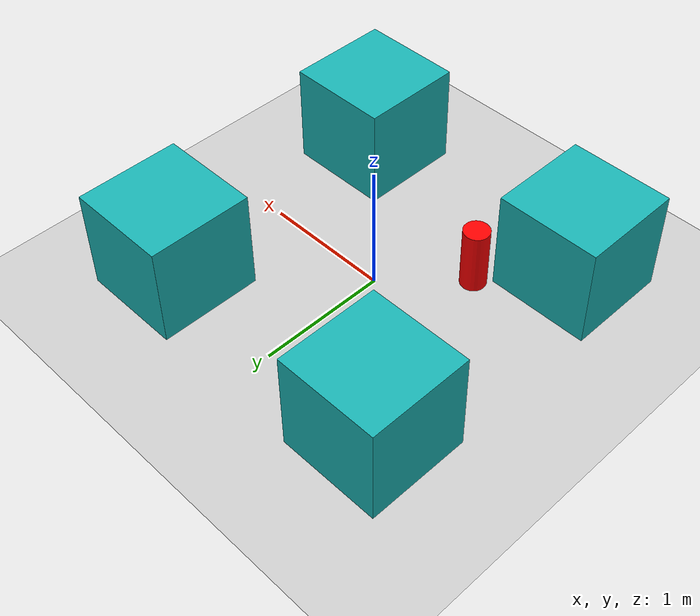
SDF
<sdf version="1.6">
 <world name="default">
  <light name="sun" type="directional">
   <pose>0 0 10 0 -0 0</pose>
   <diffuse>0.8 0.8 0.8 1</diffuse>
   <specular>0.1 0.1 0.1 1</specular>
   <attenuation>
    <range>1000</range>
    <constant>0.9</constant>
    <linear>0.01</linear>
    <quadratic>0.001</quadratic>
   </attenuation>
   <direction>-0.5 0.5 -1</direction>
  </light>
  <model name="ground_plane">
   <static>1</static>
   <link name="link">
    <collision name="collision">
     <geometry><plane><normal>0 0 1</normal><size>100 100</size></plane></geometry>
     <surface><friction><ode><mu>100</mu><mu2>50</mu2></ode></friction></surface>
    </collision>
    <visual name="visual">
     <cast_shadows>0</cast_shadows>
     <geometry><plane><normal>0 0 1</normal><size>100 100</size></plane></geometry>
     <material>
      <script><uri>file://media/materials/scripts/gazebo.material</uri><name>Gazebo/Grey</name></script>
     </material>
    </visual>
   </link>
  </model>
  <gravity>0 0 -9.8</gravity>
  <magnetic_field>6e-06 2.3e-05 -4.2e-05</magnetic_field>
  <atmosphere type="adiabatic"/>
  <physics name="default_physics" default="0" type="ode">
   <max_step_size>0.001</max_step_size>
   <real_time_factor>1</real_time_factor>
   <real_time_update_rate>1000</real_time_update_rate>
  </physics>
  <scene><ambient>0.4 0.4 0.4 1</ambient><background>0.7 0.7 0.7 1</background><shadows>1</shadows></scene>
  <spherical_coordinates>
   <surface_model>EARTH_WGS84</surface_model>
   <latitude_deg>0</latitude_deg>
   <longitude_deg>0</longitude_deg>
   <elevation>0</elevation>
   <heading_deg>0</heading_deg>
  </spherical_coordinates>
  <model name="simple_map_feu">
   <link name="link_0">
    <pose>-1 1 0 0 -0 0</pose>
    <inertial>
     <mass>1</mass>
     <inertia>
      <ixx>0.166667</ixx>
      <ixy>0</ixy>
      <ixz>0</ixz>
      <iyy>0.166667</iyy>
      <iyz>0</iyz>
      <izz>0.166667</izz>
     </inertia>
    </inertial>
    <visual name="visual">
     <pose>0 0 -0.1 0 -0 0</pose>
     <geometry><box><size>0.8 0.8 0.8</size></box></geometry>
     <material>
      <lighting>1</lighting>
      <script><uri>file://media/materials/scripts/gazebo.material</uri><name>Gazebo/Grey</name></script>
      <ambient>0.1 0.3 0.7 1</ambient>
      <diffuse>0.1 0.7 0.7 1</diffuse>
      <specular>0.1 0.01 0.7 1</specular>
      <emissive>0.1 0 0.7 1</emissive>
      <shader type="vertex"><normal_map>__default__</normal_map></shader>
     </material>
    </visual>
    <collision name="collision">
     <pose>0 0 -0.1 0 -0 0</pose>
     <geometry><box><size>0.8 0.8 0.8</size></box></geometry>
     <surface>
      <friction>
       <ode><mu>1</mu><mu2>1</mu2><fdir1>0 0 0</fdir1><slip1>0</slip1><slip2>0</slip2></ode>
       <torsional>
        <coefficient>1</coefficient>
        <patch_radius>0</patch_radius>
        <surface_radius>0</surface_radius>
        <use_patch_radius>1</use_patch_radius>
        <ode><slip>0</slip></ode>
       </torsional>
      </friction>
      <bounce><restitution_coefficient>0</restitution_coefficient><threshold>1e+06</threshold></bounce>
      <contact>
       <collide_without_contact>0</collide_without_contact>
       <collide_without_contact_bitmask>1</collide_without_contact_bitmask>
       <collide_bitmask>1</collide_bitmask>
       <ode>
        <soft_cfm>0</soft_cfm>
        <soft_erp>0.2</soft_erp>
        <kp>1e+13</kp>
        <kd>1</kd>
        <max_vel>0.01</max_vel>
        <min_depth>0</min_depth>
       </ode>
       <bullet>
        <split_impulse>1</split_impulse>
        <split_impulse_penetration_threshold>-0.01</split_impulse_penetration_threshold>
        <soft_cfm>0</soft_cfm>
        <soft_erp>0.2</soft_erp>
        <kp>1e+13</kp>
        <kd>1</kd>
       </bullet>
      </contact>
     </surface>
    </collision>
   </link>
   <link name="link_0_clone">
    <pose>1 1 0 0 -0 0</pose>
    <inertial>
     <mass>1</mass>
     <inertia>
      <ixx>0.166667</ixx>
      <ixy>0</ixy>
      <ixz>0</ixz>
      <iyy>0.166667</iyy>
      <iyz>0</iyz>
      <izz>0.166667</izz>
     </inertia>
    </inertial>
    <visual name="visual">
     <pose>0 0 -0.1 0 -0 0</pose>
     <geometry><box><size>0.8 0.8 0.8</size></box></geometry>
     <material>
      <lighting>1</lighting>
      <script><uri>file://media/materials/scripts/gazebo.material</uri><name>Gazebo/Grey</name></script>
      <ambient>0.1 0.3 0.7 1</ambient>
      <diffuse>0.1 0.7 0.7 1</diffuse>
      <specular>0.1 0.01 0.7 1</specular>
      <emissive>0.1 0 0.7 1</emissive>
      <shader type="vertex"><normal_map>__default__</normal_map></shader>
     </material>
    </visual>
    <collision name="collision">
     <pose>0 0 -0.1 0 -0 0</pose>
     <geometry><box><size>0.8 0.8 0.8</size></box></geometry>
     <surface>
      <friction>
       <ode><mu>1</mu><mu2>1</mu2><fdir1>0 0 0</fdir1><slip1>0</slip1><slip2>0</slip2></ode>
       <torsional>
        <coefficient>1</coefficient>
        <patch_radius>0</patch_radius>
        <surface_radius>0</surface_radius>
        <use_patch_radius>1</use_patch_radius>
        <ode><slip>0</slip></ode>
       </torsional>
      </friction>
      <bounce><restitution_coefficient>0</restitution_coefficient><threshold>1e+06</threshold></bounce>
      <contact>
       <collide_without_contact>0</collide_without_contact>
       <collide_without_contact_bitmask>1</collide_without_contact_bitmask>
       <collide_bitmask>1</collide_bitmask>
       <ode>
        <soft_cfm>0</soft_cfm>
        <soft_erp>0.2</soft_erp>
        <kp>1e+13</kp>
        <kd>1</kd>
        <max_vel>0.01</max_vel>
        <min_depth>0</min_depth>
       </ode>
       <bullet>
        <split_impulse>1</split_impulse>
        <split_impulse_penetration_threshold>-0.01</split_impulse_penetration_threshold>
        <soft_cfm>0</soft_cfm>
        <soft_erp>0.2</soft_erp>
        <kp>1e+13</kp>
        <kd>1</kd>
       </bullet>
      </contact>
     </surface>
    </collision>
   </link>
   <link name="link_0_clone_0">
    <pose>1 -1 0 0 -0 0</pose>
    <inertial>
     <mass>1</mass>
     <inertia>
      <ixx>0.166667</ixx>
      <ixy>0</ixy>
      <ixz>0</ixz>
      <iyy>0.166667</iyy>
      <iyz>0</iyz>
      <izz>0.166667</izz>
     </inertia>
    </inertial>
    <visual name="visual">
     <pose>0 0 -0.1 0 -0 0</pose>
     <geometry><box><size>0.8 0.8 0.8</size></box></geometry>
     <material>
      <lighting>1</lighting>
      <script><uri>file://media/materials/scripts/gazebo.material</uri><name>Gazebo/Grey</name></script>
      <ambient>0.1 0.3 0.7 1</ambient>
      <diffuse>0.1 0.7 0.7 1</diffuse>
      <specular>0.1 0.01 0.7 1</specular>
      <emissive>0.1 0 0.7 1</emissive>
      <shader type="vertex"><normal_map>__default__</normal_map></shader>
     </material>
    </visual>
    <collision name="collision">
     <pose>0 0 -0.1 0 -0 0</pose>
     <geometry><box><size>0.8 0.8 0.8</size></box></geometry>
     <surface>
      <friction>
       <ode><mu>1</mu><mu2>1</mu2><fdir1>0 0 0</fdir1><slip1>0</slip1><slip2>0</slip2></ode>
       <torsional>
        <coefficient>1</coefficient>
        <patch_radius>0</patch_radius>
        <surface_radius>0</surface_radius>
        <use_patch_radius>1</use_patch_radius>
        <ode><slip>0</slip></ode>
       </torsional>
      </friction>
      <bounce><restitution_coefficient>0</restitution_coefficient><threshold>1e+06</threshold></bounce>
      <contact>
       <collide_without_contact>0</collide_without_contact>
       <collide_without_contact_bitmask>1</collide_without_contact_bitmask>
       <collide_bitmask>1</collide_bitmask>
       <ode>
        <soft_cfm>0</soft_cfm>
        <soft_erp>0.2</soft_erp>
        <kp>1e+13</kp>
        <kd>1</kd>
        <max_vel>0.01</max_vel>
        <min_depth>0</min_depth>
       </ode>
       <bullet>
        <split_impulse>1</split_impulse>
        <split_impulse_penetration_threshold>-0.01</split_impulse_penetration_threshold>
        <soft_cfm>0</soft_cfm>
        <soft_erp>0.2</soft_erp>
        <kp>1e+13</kp>
        <kd>1</kd>
       </bullet>
      </contact>
     </surface>
    </collision>
   </link>
   <link name="link_0_clone_1">
    <pose>-1 -1 0 0 -0 0</pose>
    <inertial>
     <mass>1</mass>
     <inertia>
      <ixx>0.166667</ixx>
      <ixy>0</ixy>
      <ixz>0</ixz>
      <iyy>0.166667</iyy>
      <iyz>0</iyz>
      <izz>0.166667</izz>
     </inertia>
    </inertial>
    <visual name="visual">
     <pose>0 0 -0.1 0 -0 0</pose>
     <geometry><box><size>0.8 0.8 0.8</size></box></geometry>
     <material>
      <lighting>1</lighting>
      <script><uri>file://media/materials/scripts/gazebo.material</uri><name>Gazebo/Grey</name></script>
      <ambient>0.1 0.3 0.7 1</ambient>
      <diffuse>0.1 0.7 0.7 1</diffuse>
      <specular>0.1 0.01 0.7 1</specular>
      <emissive>0.1 0 0.7 1</emissive>
      <shader type="vertex"><normal_map>__default__</normal_map></shader>
     </material>
    </visual>
    <collision name="collision">
     <pose>0 0 -0.1 0 -0 0</pose>
     <geometry><box><size>0.8 0.8 0.8</size></box></geometry>
     <surface>
      <friction>
       <ode><mu>1</mu><mu2>1</mu2><fdir1>0 0 0</fdir1><slip1>0</slip1><slip2>0</slip2></ode>
       <torsional>
        <coefficient>1</coefficient>
        <patch_radius>0</patch_radius>
        <surface_radius>0</surface_radius>
        <use_patch_radius>1</use_patch_radius>
        <ode><slip>0</slip></ode>
       </torsional>
      </friction>
      <bounce><restitution_coefficient>0</restitution_coefficient><threshold>1e+06</threshold></bounce>
      <contact>
       <collide_without_contact>0</collide_without_contact>
       <collide_without_contact_bitmask>1</collide_without_contact_bitmask>
       <collide_bitmask>1</collide_bitmask>
       <ode>
        <soft_cfm>0</soft_cfm>
        <soft_erp>0.2</soft_erp>
        <kp>1e+13</kp>
        <kd>1</kd>
        <max_vel>0.01</max_vel>
        <min_depth>0</min_depth>
       </ode>
       <bullet>
        <split_impulse>1</split_impulse>
        <split_impulse_penetration_threshold>-0.01</split_impulse_penetration_threshold>
        <soft_cfm>0</soft_cfm>
        <soft_erp>0.2</soft_erp>
        <kp>1e+13</kp>
        <kd>1</kd>
       </bullet>
      </contact>
     </surface>
    </collision>
   </link>
   <link name="link_1">
    <inertial>
     <mass>1</mass>
     <inertia><ixx>0.145833</ixx><ixy>0</ixy><ixz>0</ixz><iyy>0.145833</iyy><iyz>0</iyz><izz>0.125</izz></inertia>
    </inertial>
    <gravity>0</gravity>
    <visual name="visual">
     <pose>-0.5 -0.5 -0.25 0 -0 0</pose>
     <geometry><cylinder><radius>0.1</radius><length>0.5</length></cylinder></geometry>
     <material>
      <lighting>1</lighting>
      <script><uri>file://media/materials/scripts/gazebo.material</uri><name>Gazebo/Grey</name></script>
      <ambient>1 0 0 1</ambient>
      <diffuse>1 0 0 1</diffuse>
      <specular>1 0 0 1</specular>
      <emissive>1 0 0 1</emissive>
      <shader type="vertex"><normal_map>__default__</normal_map></shader>
     </material>
    </visual>
    <collision name="collision">
     <pose>-0.5 -0.5 -0.25 0 -0 0</pose>
     <geometry><cylinder><radius>0.1</radius><length>0.5</length></cylinder></geometry>
     <surface>
      <friction>
       <ode><mu>1</mu><mu2>1</mu2><fdir1>0 0 0</fdir1><slip1>0</slip1><slip2>0</slip2></ode>
       <torsional>
        <coefficient>1</coefficient>
        <patch_radius>0</patch_radius>
        <surface_radius>0</surface_radius>
        <use_patch_radius>1</use_patch_radius>
        <ode><slip>0</slip></ode>
       </torsional>
      </friction>
      <bounce><restitution_coefficient>0</restitution_coefficient><threshold>1e+06</threshold></bounce>
      <contact>
       <collide_without_contact>0</collide_without_contact>
       <collide_without_contact_bitmask>1</collide_without_contact_bitmask>
       <collide_bitmask>1</collide_bitmask>
       <ode>
        <soft_cfm>0</soft_cfm>
        <soft_erp>0.2</soft_erp>
        <kp>1e+13</kp>
        <kd>1</kd>
        <max_vel>0.01</max_vel>
        <min_depth>0</min_depth>
       </ode>
       <bullet>
        <split_impulse>1</split_impulse>
        <split_impulse_penetration_threshold>-0.01</split_impulse_penetration_threshold>
        <soft_cfm>0</soft_cfm>
        <soft_erp>0.2</soft_erp>
        <kp>1e+13</kp>
        <kd>1</kd>
       </bullet>
      </contact>
     </surface>
    </collision>
   </link>
   <static>0</static>
   <pose>-1e-06 -1e-06 0.500003 1e-06 -7e-06 1e-06</pose>
  </model>
 </world>
</sdf>
